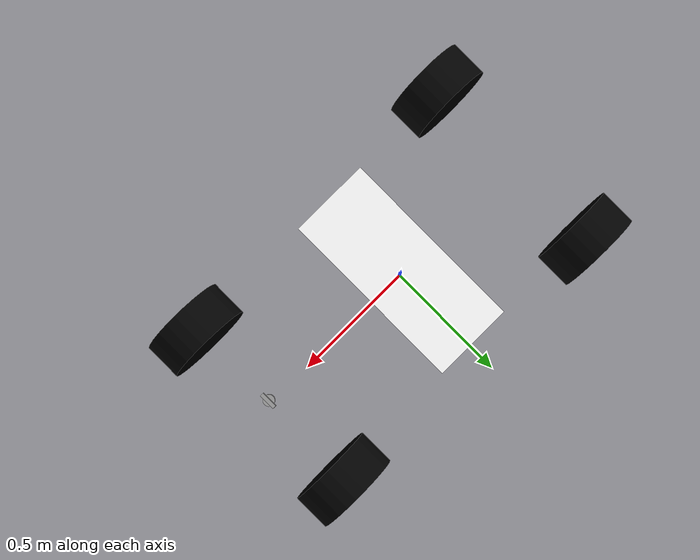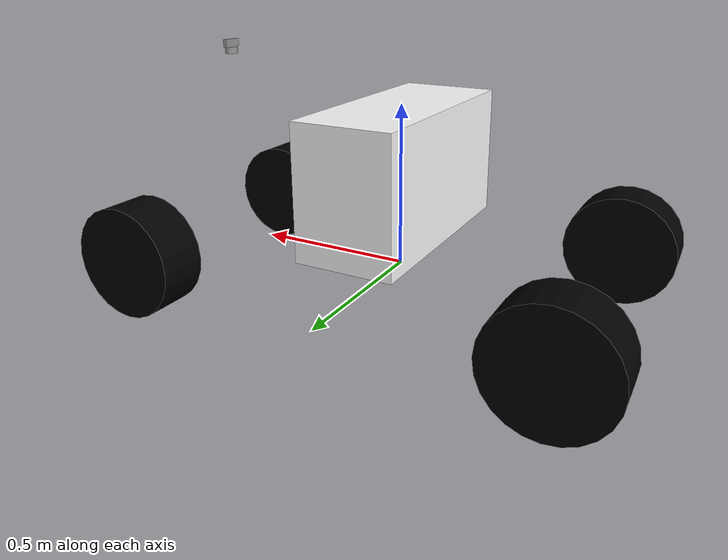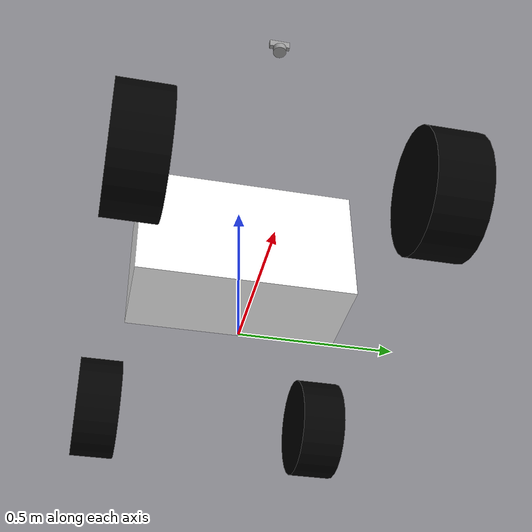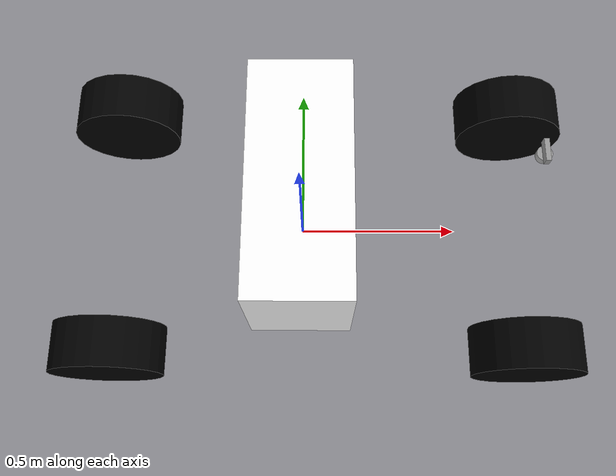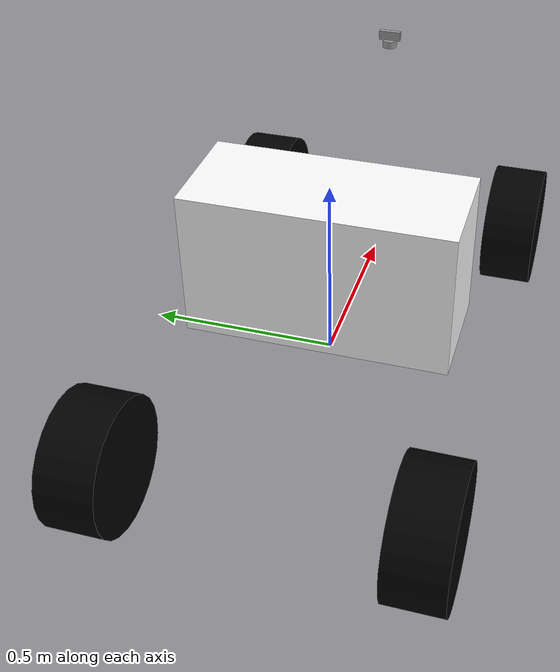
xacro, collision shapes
<?xml version="1.0"?>

<robot xmlns:xacro="http://www.ros.org/wiki/xacro" name="car">

    <xacro:include filename="inertial.xacro"/>
    <xacro:include filename="robot_ros2_control.xacro"/>
    <xacro:include filename="car.urdf.xacro"/>
    <xacro:include filename="camera.xacro"/>
    <xacro:include filename="lidar.xacro"/>

</robot>

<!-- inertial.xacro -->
<robot name="car" xmlns:xacro="http://www.ros.org/wiki/xacro">

    <xacro:macro name="inertial_box" params="mass x y z xyz rpy">
        <inertial>
            <origin xyz="${xyz}" rpy="${rpy}"/>
            <mass value="${mass}"/>
            <inertia ixx="${(1/12) * mass * (y*y + z*z)}" ixy="0.0" ixz="0.0"
                     iyy="${(1/12) * mass * (x*x + z*z)}" iyz="0.0"
                     izz="${(1/12) * mass * (x*x + y*y)}"/>
        </inertial>
    </xacro:macro>

    <xacro:macro name="inertial_cylinder" params="mass radius length xyz rpy">
        <inertial>
            <origin xyz="${xyz}" rpy="${rpy}"/>
            <mass value="${mass}"/>
            <inertia ixx="${(1/12) * mass * (3*radius*radius + length*length)}" ixy="0.0" ixz="0.0"
                     iyy="${(1/12) * mass * (3*radius*radius + length*length)}" iyz="0.0"
                     izz="${(1/2) * mass * (radius*radius)}"/>
        </inertial>

    </xacro:macro>

    <xacro:macro name="inertial_sphere" params="mass radius xyz rpy">
        <inertial>
            <origin xyz="${xyz}" rpy="${rpy}"/>
            <mass value="${mass}"/>
            <inertia ixx="${(2/5) * mass * (radius*radius)}" ixy="0.0" ixz="0.0"
                     iyy="${(2/5) * mass * (radius*radius)}" iyz="0.0"
                     izz="${(2/5) * mass * (radius*radius)}"/>
        </inertial>
    </xacro:macro>

</robot>

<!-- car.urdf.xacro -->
<robot xmlns:xacro="http://www.ros.org/wiki/xacro" name="car">

    <material name="black">
        <color rgba="0.0 0.0 0.0 1.0"/>
    </material>

    <material name="white">
        <color rgba="1.0 1.0 1.0 1.0"/>
    </material>

    <link name="base_link"/>

    <joint name="base_link_connection" type="fixed">
        <parent link="base_link" />
        <child link="chassis" />
        <origin xyz="0.0 0 0" rpy="0 0 0.0" />
    </joint>

    <link name="chassis">
        <visual>
            <origin xyz="0.0 0.0 0.0" rpy="0.0 0.0 ${pi/2}"/>
            <geometry>
                <mesh filename="file://$(find four_wheel_car)/meshes/golf_car.dae"/>
            </geometry>
            <material name="white"/>
       </visual>
       <collision>
            <origin xyz="0.0 0.0 0.3" rpy="0.0 0.0 ${pi/2}"/>
            <geometry>
                <box size="0.7 0.3 0.4"/>
            </geometry>
       </collision>
       <xacro:inertial_box mass="5" x="1.0" y="0.4" z="0.0" xyz="0.0 0.0 0.0" rpy="0.0 0.0 ${pi/2}"/>
    </link>

    <link name="fl_axle">
        <xacro:inertial_box mass="0.1" x="0.04" y="0.04" z="0.04" xyz="0.0 0.0 0.0" rpy="0.0 0.0 0.0"/>
    </link>

    <link name="fr_axle">
        <xacro:inertial_box mass="0.1" x="0.04" y="0.04" z="0.04" xyz="0.0 0.0 0.0" rpy="0.0 0.0 0.0"/>
    </link>

    <link name="front_left_wheel">
        <visual>
            <origin xyz="0.0 0.0 0.0" rpy="${pi/2} 0.0 ${pi/2}"/>
            <geometry>
                <mesh filename="file://$(find four_wheel_car)/meshes/wheel.dae"/>
            </geometry>
            <material name="black"/>
        </visual>
        <collision>
            <origin xyz="0.0 0.0 0.0" rpy="${pi/2} 0.0 0.0"/>
            <geometry>
                <cylinder radius="0.175" length="0.15"/>
            </geometry>
        </collision>
        <xacro:inertial_cylinder mass="0.5" radius="0.175" length="0.15" xyz="0 0 0" rpy="${pi/2} 0 0"/>
    </link>

    <link name="front_right_wheel">
        <visual>
            <origin xyz="0.0 0.0 0.0" rpy="${pi/2} 0.0 ${pi*3/2}"/>
            <geometry>
               <mesh filename="file://$(find four_wheel_car)/meshes/wheel.dae"/>
            </geometry>
            <material name="black"/>
        </visual>
        <collision>
            <origin xyz="0.0 0.0 0.0" rpy="${pi/2} 0.0 0.0"/>
            <geometry>
                <cylinder radius="0.175" length="0.15"/>
            </geometry>
        </collision>
        <xacro:inertial_cylinder mass="0.8" radius="0.175" length="0.15" xyz="0 0 0" rpy="${pi/2} 0 0"/>
    </link>

    <link name="rear_left_wheel">
        <visual>
            <origin xyz="0.0 0.0 0.0" rpy="${pi/2} 0.0 ${pi/2}"/>
            <geometry>
                <mesh filename="file://$(find four_wheel_car)/meshes/wheel.dae"/>
            </geometry>
            <material name="black"/>
        </visual>
        <collision>
            <origin xyz="0.0 0.0 0.0" rpy="${pi/2} 0.0 0.0"/>
            <geometry>
                <cylinder radius="0.175" length="0.15"/>
            </geometry>
        </collision>
        <xacro:inertial_cylinder mass="0.8" radius="0.175" length="0.15" xyz="0 0 0" rpy="${pi/2} 0 0"/>
    </link>

    <link name="rear_right_wheel">
        <visual>
            <origin xyz="0.0 0.0 0.0" rpy="${pi/2} 0.0 ${pi*3/2}"/>
            <geometry>
                <mesh filename="file://$(find four_wheel_car)/meshes/wheel.dae"/>
            </geometry>
            <material name="black"/>
        </visual>
        <collision>
            <origin xyz="0.0 0.0 0.0" rpy="${pi/2} 0.0 0.0"/>
            <geometry>
                <cylinder radius="0.175" length="0.15"/>
            </geometry>
        </collision>
        <xacro:inertial_cylinder mass="0.8" radius="0.175" length="0.15" xyz="0 0 0" rpy="${pi/2} 0 0"/>
    </link>

    <joint name="front_left_steer_joint" type="revolute">
        <origin xyz="0.70 0.4 0.03" rpy="0.0 0.0 0.0"/>
        <parent link="chassis"/>
        <child link="fl_axle"/>
        <axis xyz="0.0 0.0 1.0"/>
        <limit lower="-0.785" upper="0.785" effort="10000000.0" velocity="10000000.0"/>
    </joint>

    <joint name="front_right_steer_joint" type="revolute">
        <origin xyz="0.70 -0.4 0.03" rpy="0.0 0.0 0.0"/>
        <parent link="chassis"/>
        <child link="fr_axle"/>
        <axis xyz="0.0 0.0 1.0"/>
        <limit lower="-0.785" upper="0.785" effort="10000000.0" velocity="10000000.0"/>
    </joint>

    <joint name="front_left_wheel_joint" type="continuous">
        <parent link="fl_axle" />
        <child link="front_left_wheel" />
        <origin xyz="0 0 0" rpy="0 0 0" />
        <axis xyz="0 1 0" />
    </joint>

    <joint name="front_right_wheel_joint" type="continuous">
        <parent link="fr_axle" />
        <child link="front_right_wheel" />
        <origin xyz="0 0 0" rpy="0 0 0" />
        <axis xyz="0 1 0" />
    </joint>

    <joint name="rear_left_wheel_joint" type="continuous">
        <origin xyz="-0.60 0.4 0.03" rpy="0.0 0.0 0.0"/>
        <parent link="chassis" />
        <child link="rear_left_wheel" />
        <axis xyz="0 1 0" />
    </joint>

    <joint name="rear_right_wheel_joint" type="continuous">
        <origin xyz="-0.60 -0.4 0.03" rpy="0.0 0.0 0.0"/>
        <parent link="chassis" />
        <child link="rear_right_wheel" />
        <axis xyz="0 1 0" />
    </joint>

    <gazebo reference="chassis">
        <material>Gazebo/Yellow</material>
    </gazebo>

    <gazebo reference="front_left_wheel">
        <material>Gazebo/Black</material>
    </gazebo>

    <gazebo reference="front_right_wheel">
        <material>Gazebo/Black</material>
    </gazebo>

    <gazebo reference="rear_left_wheel">
        <material>Gazebo/Black</material>
    </gazebo>

    <gazebo reference="rear_right_wheel">
        <material>Gazebo/Black</material>
    </gazebo>

</robot>

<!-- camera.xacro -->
<robot xmlns:xacro="http://www.ros.org/wiki/xacro" name="car">

    <link name="camera_link">
        <visual>
            <origin xyz="0.0 0.0 0.0" rpy="0.0 0.0 0.0"/>
            <geometry>
                <box size="0.013 0.06 0.025"/>
            </geometry>
            <material name="gray"/>
        </visual>
        <collision>
            <origin xyz="0.0 0.0 0.0" rpy="0.0 0.0 0.0"/>
            <geometry>
                <box size="0.013 0.06 0.025"/>
            </geometry>
        </collision>
        <xacro:inertial_box mass="0.01" x="0.013" y="0.06" z="0.025" xyz="0 0 0" rpy="0 0 0"/>
    </link>

    <joint name="camera_joint" type="fixed">
        <origin xyz="0.0 0.0 0.023" rpy="0.0 0.0 0.0"/>
        <parent link="laser_frame"/>
        <child link="camera_link"/>
    </joint>

    <gazebo reference = "camera_link">
        <material>Gazebo/Black</material>
        <sensor name = "camera" type = "camera">
            <pose>0 0 0 0 0 0</pose>
            <visualize>false</visualize>
            <update_rate>10</update_rate>
            <camera>
                <horizontal_fov>1.089</horizontal_fov>
                <image>
                    <format>R8G8B8</format>
                    <width>640</width>
                    <height>480</height>
                </image>
                <clip>
                    <near>0.05</near>
                    <far>15.0</far>
                </clip>
            </camera>
            <plugin name = "camera_controller" filename = "libgazebo_ros_camera.so">
                <frame_name>camera_link</frame_name>
            </plugin>
        </sensor>
    </gazebo>

    <gazebo reference="camera_link">
        <material>Gazebo/Black</material>
    </gazebo>

</robot>

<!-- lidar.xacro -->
<robot xmlns:xacro="http://www.ros.org/wiki/xacro" name="car">

    <link name="laser_frame">
        <visual>
            <origin xyz="0.0 0.0 0.0" rpy="0.0 0.0 0.0"/>
            <geometry>
                <cylinder radius="0.02" length="0.02"/>
            </geometry>
            <material name="gray"/>
        </visual>
        <collision>
            <origin xyz="0.0 0.0 0.0" rpy="0.0 0.0 0.0"/>
            <geometry>
                <cylinder radius="0.02" length="0.02"/>
            </geometry>
        </collision>
        <xacro:inertial_cylinder mass="0.01" radius="0.02" length="0.02" xyz="0 0 0" rpy="0 0 0"/>
    </link>

    <joint name="lidar_joint" type="fixed">
        <parent link="base_link"/>
        <child link="laser_frame"/>
        <origin xyz="0.62 0.0 0.62" rpy="0.0 0.0 0.0"/>
    </joint>

    <gazebo reference="laser_frame">
        <material>Gazebo/Blue</material>
        <sensor name="laser" type="ray">
            <pose>0 0 0 0 0 0</pose>
            <visualize>false</visualize>
            <update_rate>10</update_rate>
            <ray>
                <scan>
                    <horizontal>
                        <samples>360</samples>
                        <min_angle>-3.14</min_angle>
                        <max_angle>3.14</max_angle>
                    </horizontal>
                </scan>
                <range>
                    <min>0.5</min>
                    <max>20</max>
                </range>
            </ray>
            <plugin name="lase_controller" filename="libgazebo_ros_ray_sensor.so">
                <ros>
                    <argument>~/out:=scan</argument>
                </ros>
                <output_type>sensor_msgs/LaserScan</output_type>
                <frame_name>laser_frame</frame_name>
            </plugin>
        </sensor>
    </gazebo>

</robot>

<!-- 3D lidar -->
